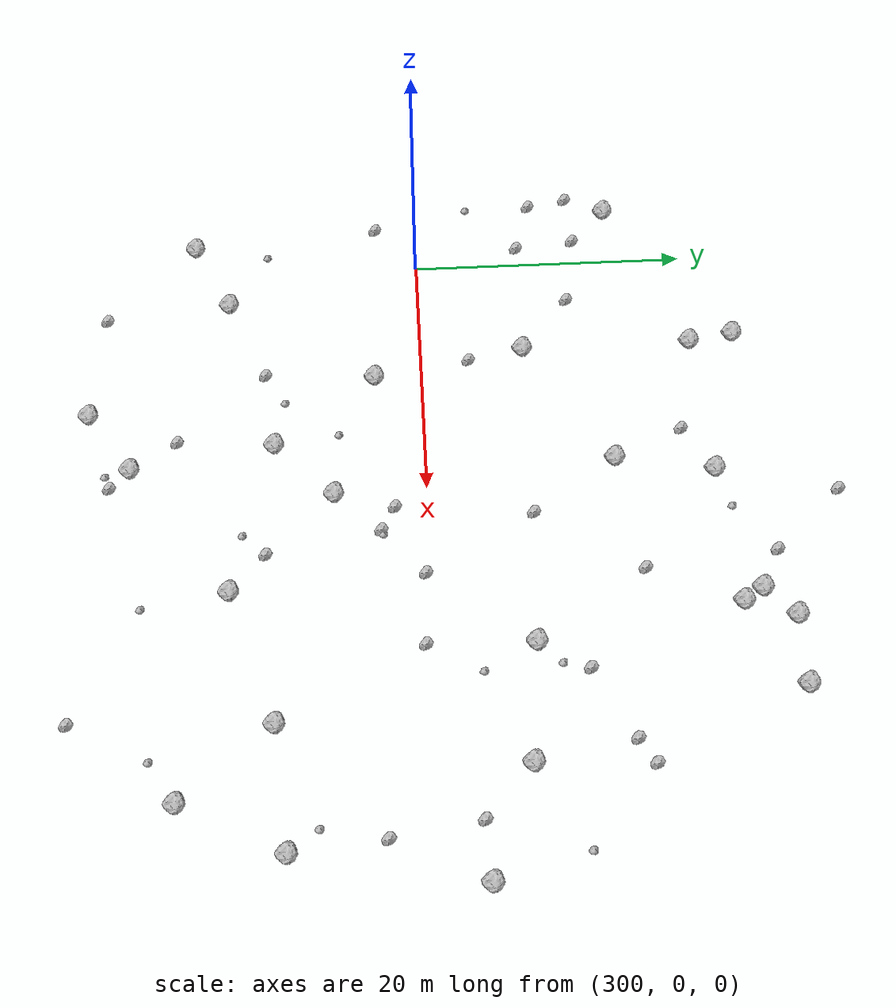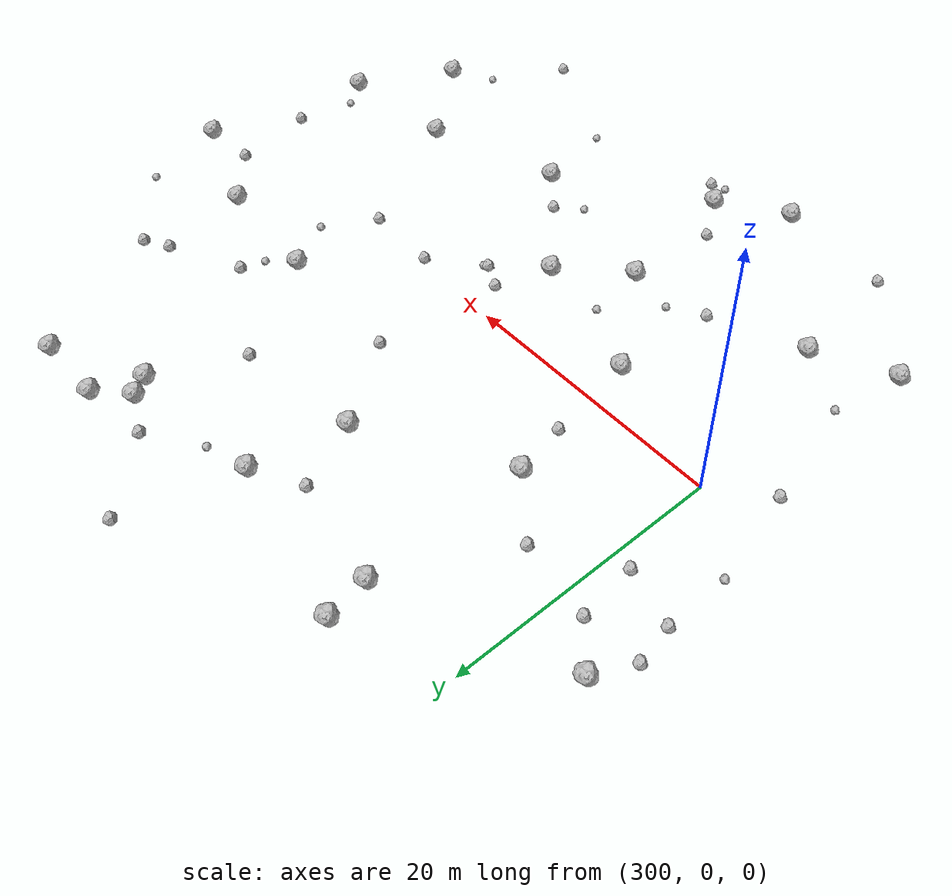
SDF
<sdf version="1.6">
 <world name="default">
  <include><uri>model://sun</uri></include>
  <model name="rock1_8_3">
   <include><uri>model://rock1</uri><pose>343.56739898221025 -17.09519188067545 0.5 0 0 0</pose></include>
  </model>
  <model name="rock1_8_4">
   <include><uri>model://rock1</uri><pose>347.3133576615659 -9.99865850317181 0.5 0 0 0</pose></include>
  </model>
  <model name="rock1_8_5">
   <include><uri>model://rock1</uri><pose>310.37287923766144 -3.4522408935815747 0.5 0 0 0</pose></include>
  </model>
  <model name="rock1_8_6">
   <include><uri>model://rock1</uri><pose>338.22065961991717 -10.75832366937712 0.5 0 0 0</pose></include>
  </model>
  <model name="rock1_8_7">
   <include><uri>model://rock1</uri><pose>319.6626732747768 20.36719270261952 0.5 0 0 0</pose></include>
  </model>
  <model name="rock1_8_8">
   <include><uri>model://rock1</uri><pose>297.5378166244886 -16.703221683035547 0.5 0 0 0</pose></include>
  </model>
  <model name="rock1_8_9">
   <include><uri>model://rock1</uri><pose>318.36815856875273 13.386936449697558 0.5 0 0 0</pose></include>
  </model>
  <model name="rock1_8_10">
   <include><uri>model://rock1</uri><pose>307.6722494904641 23.08723466882786 0.5 0 0 0</pose></include>
  </model>
  <model name="rock1_8_11">
   <include><uri>model://rock1</uri><pose>331.8203896773424 24.485136455875683 0.5 0 0 0</pose></include>
  </model>
  <model name="rock1_8_12">
   <include><uri>model://rock1</uri><pose>330.53822201935793 21.030795123404744 0.5 0 0 0</pose></include>
  </model>
  <model name="rock1_8_13">
   <include><uri>model://rock1</uri><pose>303.13807924863414 -14.092277002999644 0.5 0 0 0</pose></include>
  </model>
  <model name="rock1_8_14">
   <include><uri>model://rock1</uri><pose>316.0913507241317 -10.76029658694302 0.5 0 0 0</pose></include>
  </model>
  <model name="rock1_8_15">
   <include><uri>model://rock1</uri><pose>329.5827773692375 22.434760886658815 0.5 0 0 0</pose></include>
  </model>
  <model name="rock1_8_16">
   <include><uri>model://rock1</uri><pose>328.11436479892086 -13.851492345417704 0.5 0 0 0</pose></include>
  </model>
  <model name="rock1_8_17">
   <include><uri>model://rock1</uri><pose>349.8529123748089 2.7869745427380366 0.5 0 0 0</pose></include>
  </model>
  <model name="rock1_8_18">
   <include><uri>model://rock1</uri><pose>308.30098041480835 7.494787234047244 0.5 0 0 0</pose></include>
  </model>
  <model name="rock1_8_19">
   <include><uri>model://rock1</uri><pose>341.810558962973 5.927761706827624 0.5 0 0 0</pose></include>
  </model>
  <model name="rock1_8_20">
   <include><uri>model://rock1</uri><pose>317.7253835549746 -20.95773285851586 0.5 0 0 0</pose></include>
  </model>
  <model name="rock1_8_21">
   <include><uri>model://rock1</uri><pose>308.2242184002294 19.85258770903323 0.5 0 0 0</pose></include>
  </model>
  <model name="rock1_8_22">
   <include><uri>model://rock1</uri><pose>320.4627128410649 -6.5781648688256205 0.5 0 0 0</pose></include>
  </model>
  <model name="rock1_8_23">
   <include><uri>model://rock1</uri><pose>295.2855154321803 14.631791298311526 0.5 0 0 0</pose></include>
  </model>
  <model name="rock1_8_24">
   <include><uri>model://rock1</uri><pose>337.0726079979468 24.440638629554442 0.5 0 0 0</pose></include>
  </model>
  <model name="rock1_8_25">
   <include><uri>model://rock1</uri><pose>312.85988742890254 -24.088336340486975 0.5 0 0 0</pose></include>
  </model>
  <model name="rock1_8_26">
   <include><uri>model://rock1</uri><pose>332.9720559028682 6.785382488750457 0.5 0 0 0</pose></include>
  </model>
  <model name="rock2_8_0">
   <include><uri>model://rock2</uri><pose>325.15238963799936 -11.340528679858753 0.3 0 0 0</pose></include>
  </model>
  <model name="rock2_8_1">
   <include><uri>model://rock2</uri><pose>335.0685006750754 10.236543587431989 0.3 0 0 0</pose></include>
  </model>
  <model name="rock2_8_2">
   <include><uri>model://rock2</uri><pose>309.7762298796915 -11.36433054963533 0.3 0 0 0</pose></include>
  </model>
  <model name="rock2_8_3">
   <include><uri>model://rock2</uri><pose>340.3773826188659 12.829060992997029 0.3 0 0 0</pose></include>
  </model>
  <model name="rock2_8_4">
   <include><uri>model://rock2</uri><pose>327.53022560985767 14.65826668979193 0.3 0 0 0</pose></include>
  </model>
  <model name="rock2_8_5">
   <include><uri>model://rock2</uri><pose>346.54751409626533 -3.549847286877874 0.3 0 0 0</pose></include>
  </model>
  <model name="rock2_8_6">
   <include><uri>model://rock2</uri><pose>326.5271766205041 23.89024380213621 0.3 0 0 0</pose></include>
  </model>
  <model name="rock2_8_7">
   <include><uri>model://rock2</uri><pose>321.6743735095258 -2.3241472760605504 0.3 0 0 0</pose></include>
  </model>
  <model name="rock2_8_8">
   <include><uri>model://rock2</uri><pose>296.2248595557149 -2.9871347486046105 0.3 0 0 0</pose></include>
  </model>
  <model name="rock2_8_9">
   <include><uri>model://rock2</uri><pose>304.1050177989172 -23.094823829036624 0.3 0 0 0</pose></include>
  </model>
  <model name="rock2_8_10">
   <include><uri>model://rock2</uri><pose>345.54836995777885 2.5892084002890314 0.3 0 0 0</pose></include>
  </model>
  <model name="rock2_8_11">
   <include><uri>model://rock2</uri><pose>342.2009787738953 13.868944832161546 0.3 0 0 0</pose></include>
  </model>
  <model name="rock2_8_12">
   <include><uri>model://rock2</uri><pose>319.14312696614525 -22.327033261125507 0.3 0 0 0</pose></include>
  </model>
  <model name="rock2_8_13">
   <include><uri>model://rock2</uri><pose>298.0748441498108 12.036696278543538 0.3 0 0 0</pose></include>
  </model>
  <model name="rock2_8_14">
   <include><uri>model://rock2</uri><pose>309.0870325419185 3.498641416820597 0.3 0 0 0</pose></include>
  </model>
  <model name="rock2_8_15">
   <include><uri>model://rock2</uri><pose>298.5706917373594 7.715275627604022 0.3 0 0 0</pose></include>
  </model>
  <model name="rock2_8_16">
   <include><uri>model://rock2</uri><pose>332.71579764692444 -0.6121638803582705 0.3 0 0 0</pose></include>
  </model>
  <model name="rock2_8_17">
   <include><uri>model://rock2</uri><pose>322.62166890240917 7.345482054769626 0.3 0 0 0</pose></include>
  </model>
  <model name="rock2_8_18">
   <include><uri>model://rock2</uri><pose>303.80375524105045 11.113245542698479 0.3 0 0 0</pose></include>
  </model>
  <model name="rock2_8_19">
   <include><uri>model://rock2</uri><pose>316.01109089110054 18.38990193822776 0.3 0 0 0</pose></include>
  </model>
  <model name="rock2_8_20">
   <include><uri>model://rock2</uri><pose>315.43643063951026 -17.65805268520775 0.3 0 0 0</pose></include>
  </model>
  <model name="rock2_8_21">
   <include><uri>model://rock2</uri><pose>293.8591174894902 11.798920870542297 0.3 0 0 0</pose></include>
  </model>
  <model name="rock2_8_22">
   <include><uri>model://rock2</uri><pose>323.53058519876646 -3.3242724212663575 0.3 0 0 0</pose></include>
  </model>
  <model name="rock2_8_23">
   <include><uri>model://rock2</uri><pose>327.1693980480772 -0.3852196913032522 0.3 0 0 0</pose></include>
  </model>
  <model name="rock2_8_24">
   <include><uri>model://rock2</uri><pose>321.7668124358005 28.824095229995194 0.3 0 0 0</pose></include>
  </model>
  <model name="rock2_8_25">
   <include><uri>model://rock2</uri><pose>294.43844810734095 8.900338270963893 0.3 0 0 0</pose></include>
  </model>
  <model name="rock2_8_26">
   <include><uri>model://rock2</uri><pose>337.5506285117209 -24.27984499029811 0.3 0 0 0</pose></include>
  </model>
  <model name="rock3_8_0">
   <include><uri>model://rock3</uri><pose>347.94758384042717 9.198230032313504 0.2 0 0 0</pose></include>
  </model>
  <model name="rock3_8_1">
   <include><uri>model://rock3</uri><pose>322.73091071059895 21.222185720716155 0.2 0 0 0</pose></include>
  </model>
  <model name="rock3_8_2">
   <include><uri>model://rock3</uri><pose>334.9111214640631 3.124287288928116 0.2 0 0 0</pose></include>
  </model>
  <model name="rock3_8_3">
   <include><uri>model://rock3</uri><pose>312.26638019229824 -9.969748757590931 0.2 0 0 0</pose></include>
  </model>
  <model name="rock3_8_4">
   <include><uri>model://rock3</uri><pose>334.5397468992628 8.398032484296415 0.2 0 0 0</pose></include>
  </model>
  <model name="rock3_8_5">
   <include><uri>model://rock3</uri><pose>294.4580993678754 4.026654572632758 0.2 0 0 0</pose></include>
  </model>
  <model name="rock3_8_6">
   <include><uri>model://rock3</uri><pose>315.2678365084245 -6.138577409628521 0.2 0 0 0</pose></include>
  </model>
  <model name="rock3_8_7">
   <include><uri>model://rock3</uri><pose>323.487731840916 -12.986207009384078 0.2 0 0 0</pose></include>
  </model>
  <model name="rock3_8_8">
   <include><uri>model://rock3</uri><pose>345.6391629466266 -7.9339494389690515 0.2 0 0 0</pose></include>
  </model>
  <model name="rock3_8_9">
   <include><uri>model://rock3</uri><pose>323.84037834147654 -3.2165647755735485 0.2 0 0 0</pose></include>
  </model>
  <model name="rock3_8_10">
   <include><uri>model://rock3</uri><pose>329.0439836995731 -19.832017264518022 0.2 0 0 0</pose></include>
  </model>
  <model name="rock3_8_11">
   <include><uri>model://rock3</uri><pose>298.4740973701007 -11.24472577602927 0.2 0 0 0</pose></include>
  </model>
  <model name="rock3_8_12">
   <include><uri>model://rock3</uri><pose>318.07224332813155 -22.71609017901286 0.2 0 0 0</pose></include>
  </model>
  <model name="rock3_8_13">
   <include><uri>model://rock3</uri><pose>340.4479741203784 -18.903817523830416 0.2 0 0 0</pose></include>
  </model>
 </world>
</sdf>
